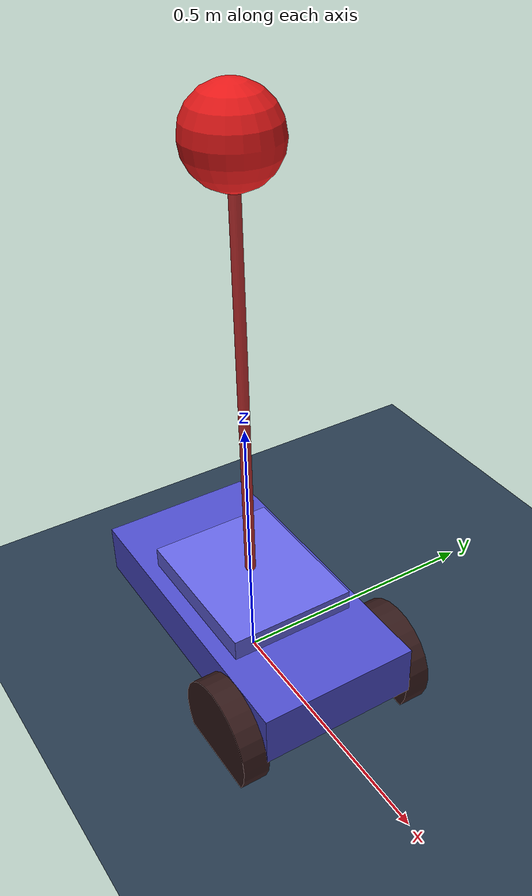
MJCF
<mujoco model="mobile_inverted_pendulum">

  <compiler angle="degree" coordinate="local" inertiafromgeom="true"/>

  <option gravity="0 0 -9.81" timestep="0.002" integrator="implicit"/>

  <default>
    <joint damping="0.1" />
    <geom friction="1.0 0.1 0.1" />
  </default>

  <asset>
    <texture name="grid" type="2d" builtin="checker" width="512" height="512"
             rgb1="0.2 0.3 0.4" rgb2="0.1 0.15 0.2"/>
    <material name="grid" texture="grid" texrepeat="1 1" texuniform="true" reflectance="0.2"/>
  </asset>

  <worldbody>

    <!-- Ground plane -->
    <geom name="ground" type="plane" pos="0 0 0" size="10 10 0.1"
          material="grid" condim="3"/>

    <light directional="true" pos="0 0 3" dir="0 0 -1"/>

    <!-- Mobile robot chassis (elevated by wheel radius) -->
    <body name="chassis" pos="0 0 0.1">
      <freejoint name="chassis_free"/>
      <geom name="chassis_geom" type="box" size="0.3 0.15 0.05"
            density="2000" rgba="0.3 0.3 0.8 1"/>
      <geom name="chassis_top" type="box" size="0.15 0.12 0.02"
            pos="0 0 0.07" density="200" rgba="0.4 0.4 0.9 1"/>

      <!-- IMU sensor site on chassis -->
      <site name="imu_site" pos="0 0 0.05" size="0.01"/>

      <!-- Left wheel (upright, touching ground) -->
      <body name="wheel_left" pos="0.2 0.17 -0.05" euler="90 0 0">
        <joint name="left_wheel_joint" type="hinge" axis="0 0 1"
               damping="0.1" frictionloss="0.01"/>
        <geom name="wheel_left_geom" type="cylinder" size="0.1 0.025"
              density="50" rgba="0.2 0.1 0.1 1"
              friction="1.5 0.01 0.01"/>
      </body>

      <!-- Right wheel (upright, touching ground) -->
      <body name="wheel_right" pos="0.2 -0.17 -0.05" euler="90 0 0">
        <joint name="right_wheel_joint" type="hinge" axis="0 0 1"
               damping="0.1" frictionloss="0.01"/>
        <geom name="wheel_right_geom" type="cylinder" size="0.1 0.025"
              density="50" rgba="0.2 0.1 0.1 1"
              friction="1.5 0.01 0.01"/>
      </body>

      <!-- Caster wheel (front support, touching ground) -->
      <body name="caster" pos="-0.2 0 -0.08" euler="90 0 0">
        <geom name="caster_geom" type="sphere" size="0.08"
              density="100" rgba="0.2 0.2 0.2 1"
              friction="1.5 0.01 0.01"/>
      </body>
      <!-- Inverted pendulum mount point -->
      <body name="pendulum_base" pos="0 0 0.1">

        <!-- Pendulum rod -->
        <body name="pendulum_rod" pos="0 0 0">
          <joint name="pendulum_hinge" type="hinge" axis="0 1 0"
                 damping="0.01" frictionloss="0.001"
                 range="-180 180" limited="false"/>

          <!-- Rod visualization -->
          <geom name="pendulum_rod_geom" type="capsule"
                fromto="0 0 0 0 0 0.85" size="0.010"
                density="35" rgba="0.8 0.2 0.2 1"/>

          <!-- Top mass (the ball to balance) -->
          <body name="pendulum_mass" pos="0 0 0.8">
            <geom name="top_mass_geom" type="sphere" size="0.08"
                  density="100" rgba="0.9 0.1 0.1 1"/>

            <!-- Visual marker on top -->
          </body>

        </body>
      </body>

    </body>
  </worldbody>

  <actuator>
    <!-- Velocity actuators for differential drive -->
    <velocity name="left_motor" joint="left_wheel_joint"
              kv="10" gear="1" ctrllimited="true" ctrlrange="-50 50"/>
    <velocity name="right_motor" joint="right_wheel_joint"
              kv="10" gear="1" ctrllimited="true" ctrlrange="-50 50"/>
  </actuator>

  <sensor>
    <!-- Pendulum angle -->
    <jointpos name="pendulum_angle" joint="pendulum_hinge"/>
    <jointvel name="pendulum_velocity" joint="pendulum_hinge"/>

    <!-- Wheel positions and velocities -->
    <jointpos name="left_wheel_pos" joint="left_wheel_joint"/>
    <jointvel name="left_wheel_vel" joint="left_wheel_joint"/>
    <jointpos name="right_wheel_pos" joint="right_wheel_joint"/>
    <jointvel name="right_wheel_vel" joint="right_wheel_joint"/>

    <!-- Chassis state -->
    <framepos name="chassis_position" objtype="body" objname="chassis"/>
    <framelinvel name="chassis_velocity" objtype="body" objname="chassis"/>
    <framequat name="chassis_orientation" objtype="body" objname="chassis"/>
    <gyro name="chassis_gyro" site="imu_site"/>
    <accelerometer name="chassis_accel" site="imu_site"/>
  </sensor>

</mujoco>
